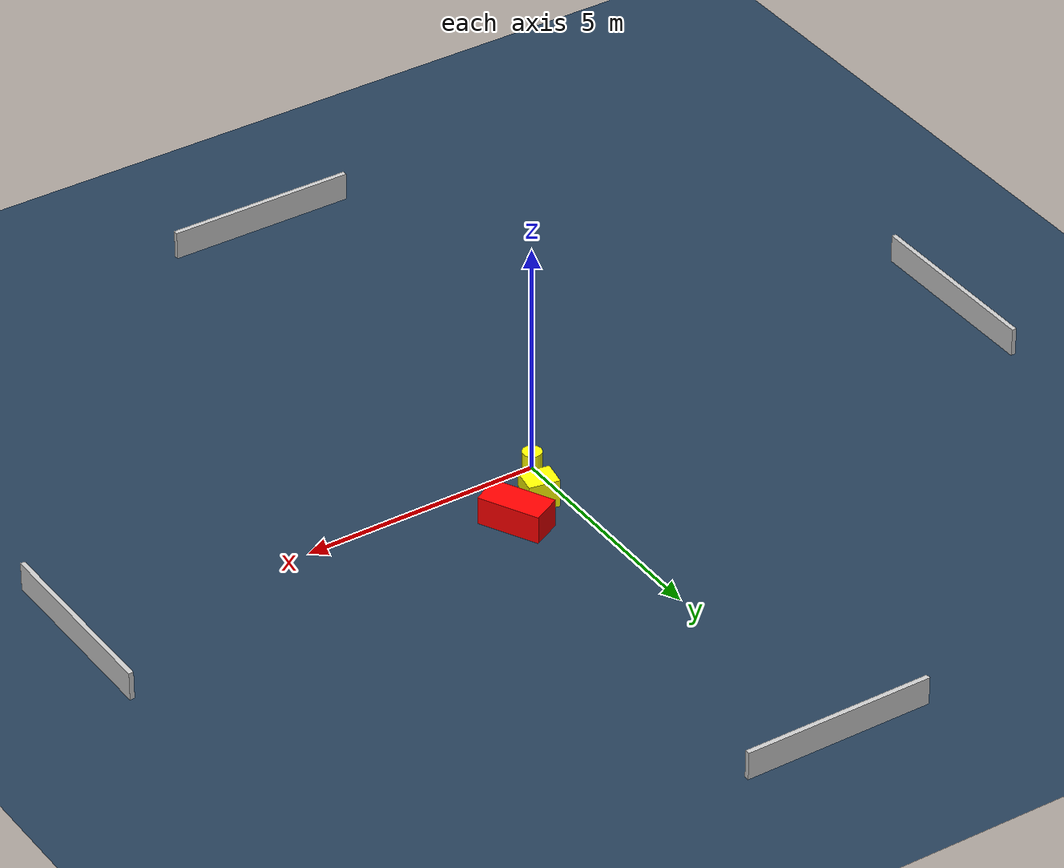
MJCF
<?xml version="1.0" ?>
<mujoco model="generated_environment">
  <option timestep="0.01" integrator="RK4" cone="elliptic"/>
  <default>
    <geom density="1"/>
  </default>
  <asset>
    <texture builtin="gradient" height="3072" name="skybox" rgb1="0.3 0.5 0.7" rgb2="0 0 0" type="skybox" width="512"/>
    <texture builtin="checker" height="300" name="groundplane" rgb1="0.2 0.3 0.4" rgb2="0.1 0.2 0.3" type="2d" width="300"/>
    <material name="groundplane" reflectance="0.2" texrepeat="5 5" texture="groundplane"/>
  </asset>
  <worldbody>
    <light dir="0 0 -1" directional="true" pos="0 0 1.5"/>
    <geom condim="3" friction="0.5 0.005 0.001" material="groundplane" name="floor" pos="0 0 0" size="0 0 0.05" type="plane"/>
    <body name="walls">
      <geom name="wall_1" condim="4" pos="-10.0 0.0 0.3" rgba="0.800000011920929 0.800000011920929 0.800000011920929 1.0" size="0.05 2.0 0.3" type="box"/>
      <geom name="wall_2" condim="4" pos="10.0 0.0 0.3" rgba="0.800000011920929 0.800000011920929 0.800000011920929 1.0" size="0.05 2.0 0.3" type="box"/>
      <geom name="wall_3" condim="4" pos="0.0 -10.0 0.3" rgba="0.800000011920929 0.800000011920929 0.800000011920929 1.0" size="2.0 0.05 0.3" type="box"/>
      <geom name="wall_4" condim="4" pos="0.0 10.0 0.3" rgba="0.800000011920929 0.800000011920929 0.800000011920929 1.0" size="2.0 0.05 0.3" type="box"/>
    </body>
    <body name="robot">
      <joint name="joint_x" type="slide" pos="0 0 0" axis="1 0 0"/>
      <joint name="joint_y" type="slide" pos="0 0 0" axis="0 1 0"/>
      <geom name="robot" type="cylinder" pos="0.0 0.0 0.2" size="0.2 0.2 0.0" mass="5.0" friction="1.0 0.005 0.0001" condim="4" rgba="1.0 1.0 0.0 1.0"/>
    </body>
    <body name="obstacle_1_movable">
      <geom name="obstacle_1_movable" condim="4" pos="0.49801603551717133 1.0023763328257913 0.3" euler="0 0 259.5662946072989" friction="0.0 0.005 0.001" rgba="1.0 1.0 0.0 1.0" size="0.26120899865493336 0.323090689013068 0.3" type="box" mass="0.1"/>
      <joint type="free"/>
    </body>
    <body name="obstacle_2_static">
      <geom name="obstacle_2_static" condim="4" pos="1.2435438080439838 1.3546816733561449 0.3" euler="0 0 207.18281078860343" friction="0.0 0.005 0.001" rgba="1.0 0.0 0.0 1.0" size="0.32931026804424235 0.659617806456831 0.3" type="box"/>
    </body>
  </worldbody>
  <actuator>
    <motor name="actuator_x" joint="joint_x" gear="1" ctrlrange="-1 1"/>
    <motor name="actuator_y" joint="joint_y" gear="1" ctrlrange="-1 1"/>
  </actuator>
</mujoco>
